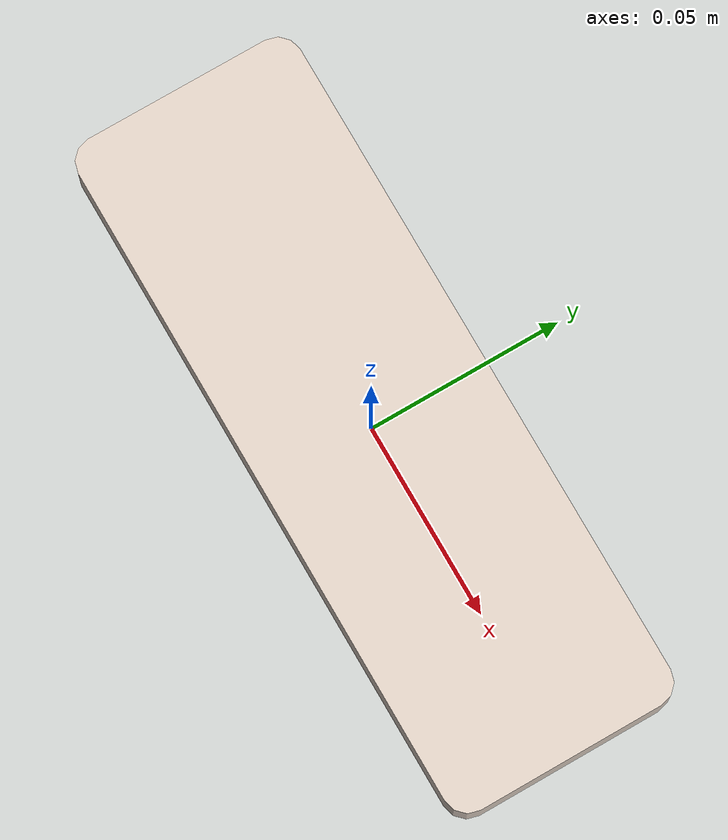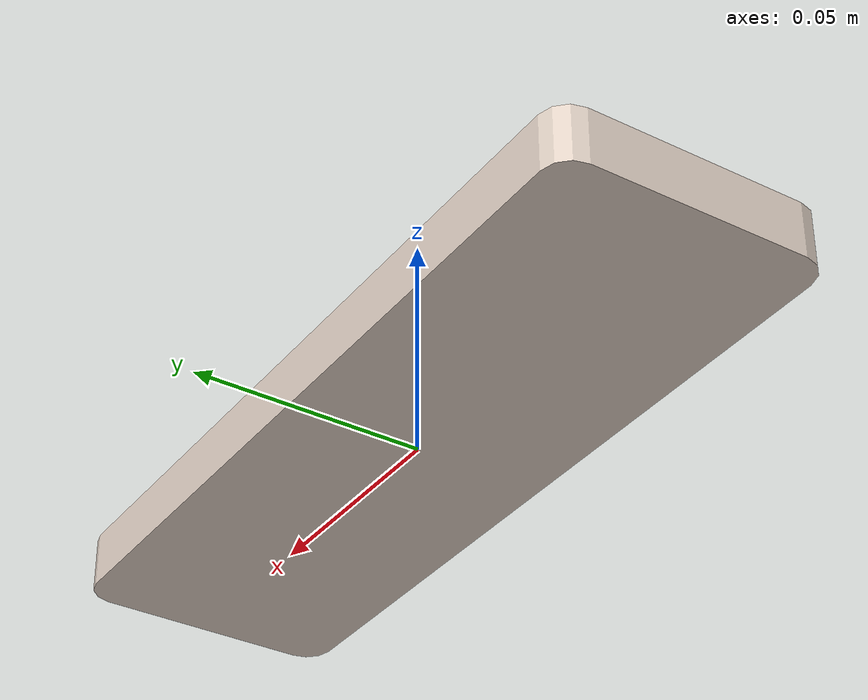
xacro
<?xml version="1.0"?>
<robot name="edo" xmlns:xacro="http://www.ros.org/wiki/xacro">
    <!-- Import Rviz colors -->
    <xacro:include filename="$(find gazebo_hanoi)/urdf/materials.xacro" />
    <!--Import the edo macro -->
    <xacro:include filename="$(find gazebo_hanoi)/urdf/towers_of_hanoi_board.xacro"/>

    <xacro:arg name="board_name" default="towers_of_hanoi_board"/>
    <xacro:arg name="origin_xyz" default="0 0 0"/>
    <xacro:arg name="origin_rpy" default="0 0 0"/>

    <!-- Fix to world just for testing -->
    <link name="world"/>

    <gazebo reference="world">
        <static>true</static>
    </gazebo>

    <xacro:towers_of_hanoi_board board_name="$(arg board_name)" parent="world">
        <origin xyz="$(arg origin_xyz)" rpy="$(arg origin_rpy)" />
    </xacro:towers_of_hanoi_board>

</robot>

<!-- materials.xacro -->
<robot>

    <material name="Black">
        <color rgba="0.0 0.0 0.0 1.0"/>
    </material>

    <material name="Blue">
        <color rgba="0.0 0.0 0.8 1.0"/>
    </material>

    <material name="Green">
        <color rgba="0.0 0.8 0.0 1.0"/>
    </material>

    <material name="Grey">
        <color rgba="0.4 0.4 0.4 1.0"/>
    </material>

    <material name="Orange">
        <color rgba="${255/255} ${108/255} ${10/255} 1.0"/>
    </material>

    <material name="Brown">
        <color rgba="${222/255} ${207/255} ${195/255} 1.0"/>
    </material>

    <material name="Red">
        <color rgba="0.8 0.0 0.0 1.0"/>
    </material>

    <material name="White">
        <color rgba="1.0 1.0 1.0 1.0"/>
    </material>

    <material name="Purple">
        <color rgba="0.5 0 0.5 1"/>
    </material>

</robot>

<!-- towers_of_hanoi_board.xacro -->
<robot xmlns:xacro="http://www.ros.org/wiki/xacro">

    <xacro:include filename="$(find edo_description)/urdf/utilities.xacro" />

    <xacro:macro name="towers_of_hanoi_board" params="parent board_name *origin">

        <!--joint between {parent} and base_link-->
        <joint name="${parent}_${board_name}_joint" type="fixed">
            <xacro:insert_block name="origin"/>
            <parent link="${parent}"/>
            <child link="${board_name}_base_link"/>
        </joint>

        <link name="${board_name}_base_link">
            <inertial>
                <origin xyz="0 0 0" rpy="0 0 0"/>
                <mass value="0.07"/>
                <inertia
                        ixx="0"
                        ixy="0"
                        ixz="0"
                        iyy="0"
                        iyz="0"
                        izz="0" />
            </inertial>

            <visual>
                <origin xyz="0 0 0" rpy="0 0 0"/>
                <geometry>
                    <mesh filename="package://gazebo_hanoi/meshes/towers_of_hanoi/hanoi-board.STL"/>
                </geometry>
                <material name="Brown"/>
            </visual>

            <collision>
                <origin xyz="0 0 0" rpy="0 0 0"/>
                <geometry>
                    <mesh filename="package://gazebo_hanoi/meshes/towers_of_hanoi/hanoi-board.STL"/>
                </geometry>
                <material name="Brown"/>
            </collision>

        </link>
        <gazebo reference="${board_name}_base_link">
            <material>Gazebo/Wood</material>
        </gazebo>

    </xacro:macro>

</robot>
